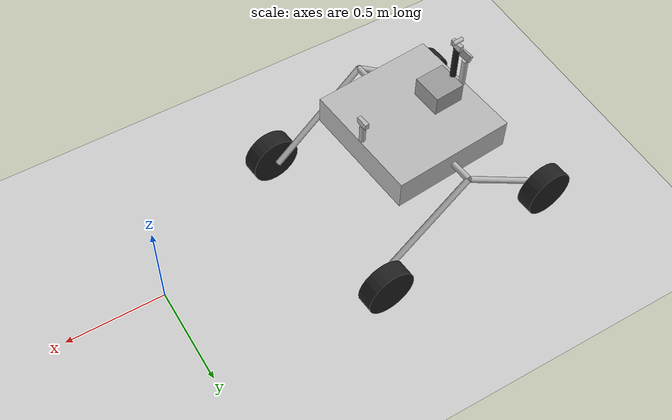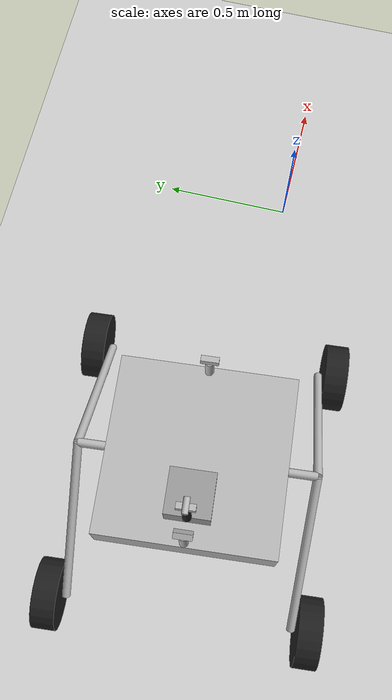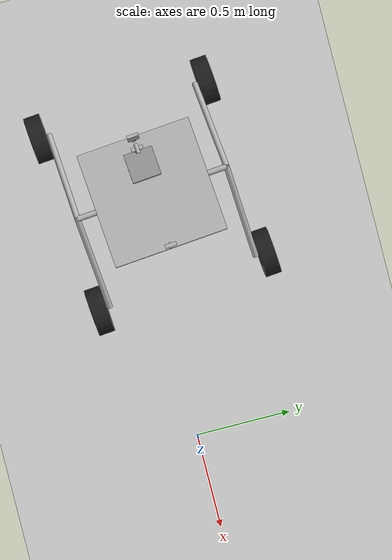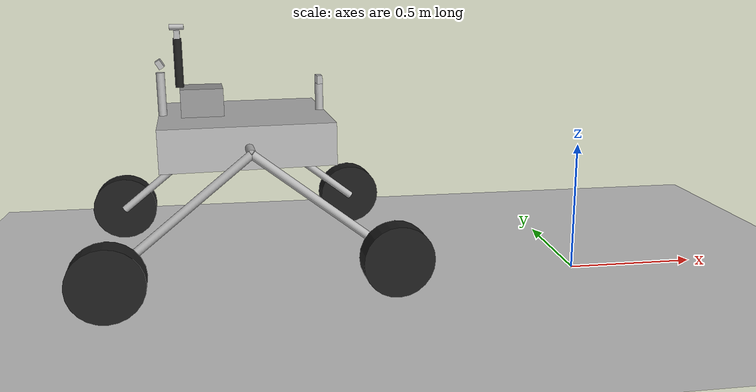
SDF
<sdf version="1.7">
 <world name="default">
  <light name="sun" type="directional">
   <pose>0 0 10 0 -0 0</pose>
   <diffuse>0.8 0.8 0.8 1</diffuse>
   <specular>0.2 0.2 0.2 1</specular>
   <attenuation>
    <range>1000</range>
    <constant>0.9</constant>
    <linear>0.01</linear>
    <quadratic>0.001</quadratic>
   </attenuation>
   <direction>-0.5 0.1 -0.9</direction>
   <spot><inner_angle>0</inner_angle><outer_angle>0</outer_angle><falloff>0</falloff></spot>
  </light>
  <model name="ground_plane">
   <static>1</static>
   <link name="link">
    <collision name="collision">
     <geometry><plane><normal>0 0 1</normal><size>100 100</size></plane></geometry>
     <surface><friction><ode><mu>100</mu><mu2>50</mu2></ode></friction></surface>
    </collision>
    <visual name="visual">
     <cast_shadows>0</cast_shadows>
     <geometry><plane><normal>0 0 1</normal><size>100 100</size></plane></geometry>
     <material>
      <script><uri>file://media/materials/scripts/gazebo.material</uri><name>Gazebo/Grey</name></script>
     </material>
    </visual>
   </link>
  </model>
  <gravity>0 0 -9.8</gravity>
  <magnetic_field>6e-06 2.3e-05 -4.2e-05</magnetic_field>
  <atmosphere type="adiabatic"/>
  <physics type="ode">
   <max_step_size>0.001</max_step_size>
   <real_time_factor>1</real_time_factor>
   <real_time_update_rate>1000</real_time_update_rate>
  </physics>
  <scene><ambient>0.4 0.4 0.4 1</ambient><background>0.7 0.7 0.7 1</background><shadows>1</shadows></scene>
  <audio><device>default</device></audio>
  <spherical_coordinates>
   <surface_model>EARTH_WGS84</surface_model>
   <latitude_deg>0</latitude_deg>
   <longitude_deg>0</longitude_deg>
   <elevation>0</elevation>
   <heading_deg>0</heading_deg>
  </spherical_coordinates>
  <light name="user_directional_light_0" type="directional">
   <pose>-0.070568 -0.022327 1 0 -0 0</pose>
   <diffuse>0.5 0.5 0.5 1</diffuse>
   <specular>0.1 0.1 0.1 1</specular>
   <direction>0.1 0.1 -0.9</direction>
   <attenuation>
    <range>20</range>
    <constant>0.5</constant>
    <linear>0.01</linear>
    <quadratic>0.001</quadratic>
   </attenuation>
   <spot><inner_angle>0</inner_angle><outer_angle>0</outer_angle><falloff>0</falloff></spot>
  </light>
  <light name="user_directional_light_1" type="directional">
   <pose>-5.26372 0.023747 1 0 -0 0</pose>
   <diffuse>0.5 0.5 0.5 1</diffuse>
   <specular>0.1 0.1 0.1 1</specular>
   <direction>0.1 0.1 -0.9</direction>
   <attenuation>
    <range>20</range>
    <constant>0.5</constant>
    <linear>0.01</linear>
    <quadratic>0.001</quadratic>
   </attenuation>
   <spot><inner_angle>0</inner_angle><outer_angle>0</outer_angle><falloff>0</falloff></spot>
  </light>
  <light name="user_directional_light_2" type="directional">
   <pose>8.31608 1.3791 1 0 -0 0</pose>
   <diffuse>0.5 0.5 0.5 1</diffuse>
   <specular>0.1 0.1 0.1 1</specular>
   <direction>0.1 0.1 -0.9</direction>
   <attenuation>
    <range>20</range>
    <constant>0.5</constant>
    <linear>0.01</linear>
    <quadratic>0.001</quadratic>
   </attenuation>
   <spot><inner_angle>0</inner_angle><outer_angle>0</outer_angle><falloff>0</falloff></spot>
  </light>
  <light name="user_directional_light_3" type="directional">
   <pose>-9.84632 -9.67318 1 0 -0 0</pose>
   <diffuse>0.5 0.5 0.5 1</diffuse>
   <specular>0.1 0.1 0.1 1</specular>
   <direction>0.1 0.1 -0.9</direction>
   <attenuation>
    <range>20</range>
    <constant>0.5</constant>
    <linear>0.01</linear>
    <quadratic>0.001</quadratic>
   </attenuation>
   <spot><inner_angle>0</inner_angle><outer_angle>0</outer_angle><falloff>0</falloff></spot>
  </light>
  <light name="user_directional_light_4" type="directional">
   <pose>9.15099 -9.88724 1 0 -0 0</pose>
   <diffuse>0.5 0.5 0.5 1</diffuse>
   <specular>0.1 0.1 0.1 1</specular>
   <direction>0.1 0.1 -0.9</direction>
   <attenuation>
    <range>20</range>
    <constant>0.5</constant>
    <linear>0.01</linear>
    <quadratic>0.001</quadratic>
   </attenuation>
   <spot><inner_angle>0</inner_angle><outer_angle>0</outer_angle><falloff>0</falloff></spot>
  </light>
  <light name="user_directional_light_5" type="directional">
   <pose>9.9512 10.2634 1 0 -0 0</pose>
   <diffuse>0.5 0.5 0.5 1</diffuse>
   <specular>0.1 0.1 0.1 1</specular>
   <direction>0.1 0.1 -0.9</direction>
   <attenuation>
    <range>20</range>
    <constant>0.5</constant>
    <linear>0.01</linear>
    <quadratic>0.001</quadratic>
   </attenuation>
   <spot><inner_angle>0</inner_angle><outer_angle>0</outer_angle><falloff>0</falloff></spot>
  </light>
  <light name="user_directional_light_6" type="directional">
   <pose>-10.0375 10.8985 1 0 -0 0</pose>
   <diffuse>0.5 0.5 0.5 1</diffuse>
   <specular>0.1 0.1 0.1 1</specular>
   <direction>0.1 0.1 -0.9</direction>
   <attenuation>
    <range>20</range>
    <constant>0.5</constant>
    <linear>0.01</linear>
    <quadratic>0.001</quadratic>
   </attenuation>
   <spot><inner_angle>0</inner_angle><outer_angle>0</outer_angle><falloff>0</falloff></spot>
  </light>
  <light name="user_point_light_0" type="point">
   <pose>-14.5382 15.183 1 0 -0 0</pose>
   <diffuse>0.5 0.5 0.5 1</diffuse>
   <specular>0.1 0.1 0.1 1</specular>
   <attenuation>
    <range>20</range>
    <constant>0.5</constant>
    <linear>0.01</linear>
    <quadratic>0.001</quadratic>
   </attenuation>
   <cast_shadows>0</cast_shadows>
   <direction>0 0 -1</direction>
   <spot><inner_angle>0</inner_angle><outer_angle>0</outer_angle><falloff>0</falloff></spot>
  </light>
  <light name="user_point_light_1" type="point">
   <pose>-1.49375 3.84131 1 0 -0 0</pose>
   <diffuse>0.5 0.5 0.5 1</diffuse>
   <specular>0.1 0.1 0.1 1</specular>
   <attenuation>
    <range>20</range>
    <constant>0.5</constant>
    <linear>0.01</linear>
    <quadratic>0.001</quadratic>
   </attenuation>
   <cast_shadows>0</cast_shadows>
   <direction>0 0 -1</direction>
   <spot><inner_angle>0</inner_angle><outer_angle>0</outer_angle><falloff>0</falloff></spot>
  </light>
  <light name="user_point_light_2" type="point">
   <pose>-19.8532 5.08826 1 0 -0 0</pose>
   <diffuse>0.5 0.5 0.5 1</diffuse>
   <specular>0.1 0.1 0.1 1</specular>
   <attenuation>
    <range>20</range>
    <constant>0.5</constant>
    <linear>0.01</linear>
    <quadratic>0.001</quadratic>
   </attenuation>
   <cast_shadows>0</cast_shadows>
   <direction>0 0 -1</direction>
   <spot><inner_angle>0</inner_angle><outer_angle>0</outer_angle><falloff>0</falloff></spot>
  </light>
  <light name="user_point_light_3" type="point">
   <pose>-9.24636 4.61592 1 0 -0 0</pose>
   <diffuse>0.5 0.5 0.5 1</diffuse>
   <specular>0.1 0.1 0.1 1</specular>
   <attenuation>
    <range>20</range>
    <constant>0.5</constant>
    <linear>0.01</linear>
    <quadratic>0.001</quadratic>
   </attenuation>
   <cast_shadows>0</cast_shadows>
   <direction>0 0 -1</direction>
   <spot><inner_angle>0</inner_angle><outer_angle>0</outer_angle><falloff>0</falloff></spot>
  </light>
  <light name="user_point_light_4" type="point">
   <pose>-2.9842 2.32247 1 0 -0 0</pose>
   <diffuse>0.5 0.5 0.5 1</diffuse>
   <specular>0.1 0.1 0.1 1</specular>
   <attenuation>
    <range>20</range>
    <constant>0.5</constant>
    <linear>0.01</linear>
    <quadratic>0.001</quadratic>
   </attenuation>
   <cast_shadows>0</cast_shadows>
   <direction>0 0 -1</direction>
   <spot><inner_angle>0</inner_angle><outer_angle>0</outer_angle><falloff>0</falloff></spot>
  </light>
  <light name="user_point_light_5" type="point">
   <pose>-27.0083 12.5073 1 0 -0 0</pose>
   <diffuse>0.5 0.5 0.5 1</diffuse>
   <specular>0.1 0.1 0.1 1</specular>
   <attenuation>
    <range>20</range>
    <constant>0.5</constant>
    <linear>0.01</linear>
    <quadratic>0.001</quadratic>
   </attenuation>
   <cast_shadows>0</cast_shadows>
   <direction>0 0 -1</direction>
   <spot><inner_angle>0</inner_angle><outer_angle>0</outer_angle><falloff>0</falloff></spot>
  </light>
  <light name="user_point_light_6" type="point">
   <pose>-29.9359 9.53439 1 0 -0 0</pose>
   <diffuse>0.5 0.5 0.5 1</diffuse>
   <specular>0.1 0.1 0.1 1</specular>
   <attenuation>
    <range>20</range>
    <constant>0.5</constant>
    <linear>0.01</linear>
    <quadratic>0.001</quadratic>
   </attenuation>
   <cast_shadows>0</cast_shadows>
   <direction>0 0 -1</direction>
   <spot><inner_angle>0</inner_angle><outer_angle>0</outer_angle><falloff>0</falloff></spot>
  </light>
  <light name="user_point_light_7" type="point">
   <pose>0.17787 21.9702 1 0 -0 0</pose>
   <diffuse>0.5 0.5 0.5 1</diffuse>
   <specular>0.1 0.1 0.1 1</specular>
   <attenuation>
    <range>20</range>
    <constant>0.5</constant>
    <linear>0.01</linear>
    <quadratic>0.001</quadratic>
   </attenuation>
   <cast_shadows>0</cast_shadows>
   <direction>0 0 -1</direction>
   <spot><inner_angle>0</inner_angle><outer_angle>0</outer_angle><falloff>0</falloff></spot>
  </light>
  <light name="user_point_light_9" type="point">
   <pose>2.789 19.1543 1 0 -0 0</pose>
   <diffuse>0.5 0.5 0.5 1</diffuse>
   <specular>0.1 0.1 0.1 1</specular>
   <attenuation>
    <range>20</range>
    <constant>0.5</constant>
    <linear>0.01</linear>
    <quadratic>0.001</quadratic>
   </attenuation>
   <cast_shadows>0</cast_shadows>
   <direction>0 0 -1</direction>
   <spot><inner_angle>0</inner_angle><outer_angle>0</outer_angle><falloff>0</falloff></spot>
  </light>
  <light name="user_point_light_10" type="point">
   <pose>-29.8025 29.7087 1 0 -0 0</pose>
   <diffuse>0.5 0.5 0.5 1</diffuse>
   <specular>0.1 0.1 0.1 1</specular>
   <attenuation>
    <range>20</range>
    <constant>0.5</constant>
    <linear>0.01</linear>
    <quadratic>0.001</quadratic>
   </attenuation>
   <cast_shadows>0</cast_shadows>
   <direction>0 0 -1</direction>
   <spot><inner_angle>0</inner_angle><outer_angle>0</outer_angle><falloff>0</falloff></spot>
  </light>
  <light name="user_point_light_11" type="point">
   <pose>-26.5274 32.3381 1 0 -0 0</pose>
   <diffuse>0.5 0.5 0.5 1</diffuse>
   <specular>0.1 0.1 0.1 1</specular>
   <attenuation>
    <range>20</range>
    <constant>0.5</constant>
    <linear>0.01</linear>
    <quadratic>0.001</quadratic>
   </attenuation>
   <cast_shadows>0</cast_shadows>
   <direction>0 0 -1</direction>
   <spot><inner_angle>0</inner_angle><outer_angle>0</outer_angle><falloff>0</falloff></spot>
  </light>
  <light name="user_point_light_12" type="point">
   <pose>-15.7215 32.3837 1 0 -0 0</pose>
   <diffuse>0.5 0.5 0.5 1</diffuse>
   <specular>0.1 0.1 0.1 1</specular>
   <attenuation>
    <range>20</range>
    <constant>0.5</constant>
    <linear>0.01</linear>
    <quadratic>0.001</quadratic>
   </attenuation>
   <cast_shadows>0</cast_shadows>
   <direction>0 0 -1</direction>
   <spot><inner_angle>0</inner_angle><outer_angle>0</outer_angle><falloff>0</falloff></spot>
  </light>
  <light name="user_point_light_13" type="point">
   <pose>-0.779195 27.6092 1 0 -0 0</pose>
   <diffuse>0.5 0.5 0.5 1</diffuse>
   <specular>0.1 0.1 0.1 1</specular>
   <attenuation>
    <range>20</range>
    <constant>0.5</constant>
    <linear>0.01</linear>
    <quadratic>0.001</quadratic>
   </attenuation>
   <cast_shadows>0</cast_shadows>
   <direction>0 0 -1</direction>
   <spot><inner_angle>0</inner_angle><outer_angle>0</outer_angle><falloff>0</falloff></spot>
  </light>
  <light name="user_point_light_14" type="point">
   <pose>-1.48071 32.5277 1 0 -0 0</pose>
   <diffuse>0.5 0.5 0.5 1</diffuse>
   <specular>0.1 0.1 0.1 1</specular>
   <attenuation>
    <range>20</range>
    <constant>0.5</constant>
    <linear>0.01</linear>
    <quadratic>0.001</quadratic>
   </attenuation>
   <cast_shadows>0</cast_shadows>
   <direction>0 0 -1</direction>
   <spot><inner_angle>0</inner_angle><outer_angle>0</outer_angle><falloff>0</falloff></spot>
  </light>
  <light name="user_point_light_15" type="point">
   <pose>-13.1654 19.1525 1 0 -0 0</pose>
   <diffuse>0.5 0.5 0.5 1</diffuse>
   <specular>0.1 0.1 0.1 1</specular>
   <attenuation>
    <range>20</range>
    <constant>0.5</constant>
    <linear>0.01</linear>
    <quadratic>0.001</quadratic>
   </attenuation>
   <cast_shadows>0</cast_shadows>
   <direction>0 0 -1</direction>
   <spot><inner_angle>0</inner_angle><outer_angle>0</outer_angle><falloff>0</falloff></spot>
  </light>
  <light name="user_point_light_16" type="point">
   <pose>-12.2243 20.8845 1 0 -0 0</pose>
   <diffuse>0.5 0.5 0.5 1</diffuse>
   <specular>0.1 0.1 0.1 1</specular>
   <attenuation>
    <range>20</range>
    <constant>0.5</constant>
    <linear>0.01</linear>
    <quadratic>0.001</quadratic>
   </attenuation>
   <cast_shadows>0</cast_shadows>
   <direction>0 0 -1</direction>
   <spot><inner_angle>0</inner_angle><outer_angle>0</outer_angle><falloff>0</falloff></spot>
  </light>
  <light name="user_point_light_17" type="point">
   <pose>-14.9667 21.0743 1 0 -0 0</pose>
   <diffuse>0.5 0.5 0.5 1</diffuse>
   <specular>0.1 0.1 0.1 1</specular>
   <attenuation>
    <range>20</range>
    <constant>0.5</constant>
    <linear>0.01</linear>
    <quadratic>0.001</quadratic>
   </attenuation>
   <cast_shadows>0</cast_shadows>
   <direction>0 0 -1</direction>
   <spot><inner_angle>0</inner_angle><outer_angle>0</outer_angle><falloff>0</falloff></spot>
  </light>
  <light name="user_point_light_18" type="point">
   <pose>-16.7804 19.2116 1 0 -0 0</pose>
   <diffuse>0.5 0.5 0.5 1</diffuse>
   <specular>0.1 0.1 0.1 1</specular>
   <attenuation>
    <range>20</range>
    <constant>0.5</constant>
    <linear>0.01</linear>
    <quadratic>0.001</quadratic>
   </attenuation>
   <cast_shadows>0</cast_shadows>
   <direction>0 0 -1</direction>
   <spot><inner_angle>0</inner_angle><outer_angle>0</outer_angle><falloff>0</falloff></spot>
  </light>
  <light name="user_point_light_19" type="point">
   <pose>-17.9644 20.9041 1 0 -0 0</pose>
   <diffuse>0.5 0.5 0.5 1</diffuse>
   <specular>0.1 0.1 0.1 1</specular>
   <attenuation>
    <range>20</range>
    <constant>0.5</constant>
    <linear>0.01</linear>
    <quadratic>0.001</quadratic>
   </attenuation>
   <cast_shadows>0</cast_shadows>
   <direction>0 0 -1</direction>
   <spot><inner_angle>0</inner_angle><outer_angle>0</outer_angle><falloff>0</falloff></spot>
  </light>
  <light name="user_point_light_20" type="point">
   <pose>-20.0538 19.1316 1 0 -0 0</pose>
   <diffuse>0.5 0.5 0.5 1</diffuse>
   <specular>0.1 0.1 0.1 1</specular>
   <attenuation>
    <range>20</range>
    <constant>0.5</constant>
    <linear>0.01</linear>
    <quadratic>0.001</quadratic>
   </attenuation>
   <cast_shadows>0</cast_shadows>
   <direction>0 0 -1</direction>
   <spot><inner_angle>0</inner_angle><outer_angle>0</outer_angle><falloff>0</falloff></spot>
  </light>
  <light name="user_point_light_21" type="point">
   <pose>-20.8227 21.0521 1 0 -0 0</pose>
   <diffuse>0.5 0.5 0.5 1</diffuse>
   <specular>0.1 0.1 0.1 1</specular>
   <attenuation>
    <range>20</range>
    <constant>0.5</constant>
    <linear>0.01</linear>
    <quadratic>0.001</quadratic>
   </attenuation>
   <cast_shadows>0</cast_shadows>
   <direction>0 0 -1</direction>
   <spot><inner_angle>0</inner_angle><outer_angle>0</outer_angle><falloff>0</falloff></spot>
  </light>
  <light name="user_point_light_22" type="point">
   <pose>-23.0722 19.1966 1 0 -0 0</pose>
   <diffuse>0.5 0.5 0.5 1</diffuse>
   <specular>0.1 0.1 0.1 1</specular>
   <attenuation>
    <range>20</range>
    <constant>0.5</constant>
    <linear>0.01</linear>
    <quadratic>0.001</quadratic>
   </attenuation>
   <cast_shadows>0</cast_shadows>
   <direction>0 0 -1</direction>
   <spot><inner_angle>0</inner_angle><outer_angle>0</outer_angle><falloff>0</falloff></spot>
  </light>
  <light name="user_point_light_23" type="point">
   <pose>-24.0466 21.1105 1 0 -0 0</pose>
   <diffuse>0.5 0.5 0.5 1</diffuse>
   <specular>0.1 0.1 0.1 1</specular>
   <attenuation>
    <range>20</range>
    <constant>0.5</constant>
    <linear>0.01</linear>
    <quadratic>0.001</quadratic>
   </attenuation>
   <cast_shadows>0</cast_shadows>
   <direction>0 0 -1</direction>
   <spot><inner_angle>0</inner_angle><outer_angle>0</outer_angle><falloff>0</falloff></spot>
  </light>
  <light name="user_point_light_24" type="point">
   <pose>-13.8616 37.5709 1 0 -0 0</pose>
   <diffuse>0.5 0.5 0.5 1</diffuse>
   <specular>0.1 0.1 0.1 1</specular>
   <attenuation>
    <range>20</range>
    <constant>0.5</constant>
    <linear>0.01</linear>
    <quadratic>0.001</quadratic>
   </attenuation>
   <cast_shadows>0</cast_shadows>
   <direction>0 0 -1</direction>
   <spot><inner_angle>0</inner_angle><outer_angle>0</outer_angle><falloff>0</falloff></spot>
  </light>
  <light name="user_point_light_25" type="point">
   <pose>-23.8197 37.2109 1 0 -0 0</pose>
   <diffuse>0.5 0.5 0.5 1</diffuse>
   <specular>0.1 0.1 0.1 1</specular>
   <attenuation>
    <range>20</range>
    <constant>0.5</constant>
    <linear>0.01</linear>
    <quadratic>0.001</quadratic>
   </attenuation>
   <cast_shadows>0</cast_shadows>
   <direction>0 0 -1</direction>
   <spot><inner_angle>0</inner_angle><outer_angle>0</outer_angle><falloff>0</falloff></spot>
  </light>
  <light name="user_point_light_8" type="point">
   <pose>-15.1409 38.0684 1 0 -0 0</pose>
   <diffuse>0.5 0.5 0.5 1</diffuse>
   <specular>0.1 0.1 0.1 1</specular>
   <attenuation>
    <range>20</range>
    <constant>0.5</constant>
    <linear>0.01</linear>
    <quadratic>0.001</quadratic>
   </attenuation>
   <cast_shadows>0</cast_shadows>
   <direction>0 0 -1</direction>
   <spot><inner_angle>0</inner_angle><outer_angle>0</outer_angle><falloff>0</falloff></spot>
  </light>
  <light name="user_point_light_26" type="point">
   <pose>-24.9128 38.12 1 0 -0 0</pose>
   <diffuse>0.5 0.5 0.5 1</diffuse>
   <specular>0.1 0.1 0.1 1</specular>
   <attenuation>
    <range>20</range>
    <constant>0.5</constant>
    <linear>0.01</linear>
    <quadratic>0.001</quadratic>
   </attenuation>
   <cast_shadows>0</cast_shadows>
   <direction>0 0 -1</direction>
   <spot><inner_angle>0</inner_angle><outer_angle>0</outer_angle><falloff>0</falloff></spot>
  </light>
  <light name="user_point_light_27" type="point">
   <pose>-7.05199 39.5828 1 0 -0 0</pose>
   <diffuse>0.5 0.5 0.5 1</diffuse>
   <specular>0.1 0.1 0.1 1</specular>
   <attenuation>
    <range>20</range>
    <constant>0.5</constant>
    <linear>0.01</linear>
    <quadratic>0.001</quadratic>
   </attenuation>
   <cast_shadows>0</cast_shadows>
   <direction>0 0 -1</direction>
   <spot><inner_angle>0</inner_angle><outer_angle>0</outer_angle><falloff>0</falloff></spot>
  </light>
  <light name="user_point_light_28" type="point">
   <pose>3.21399 38.6387 1 0 -0 0</pose>
   <diffuse>0.5 0.5 0.5 1</diffuse>
   <specular>0.1 0.1 0.1 1</specular>
   <attenuation>
    <range>20</range>
    <constant>0.5</constant>
    <linear>0.01</linear>
    <quadratic>0.001</quadratic>
   </attenuation>
   <cast_shadows>0</cast_shadows>
   <direction>0 0 -1</direction>
   <spot><inner_angle>0</inner_angle><outer_angle>0</outer_angle><falloff>0</falloff></spot>
  </light>
  <light name="user_point_light_29" type="point">
   <pose>-17.0353 45.3875 1 0 -0 0</pose>
   <diffuse>0.5 0.5 0.5 1</diffuse>
   <specular>0.1 0.1 0.1 1</specular>
   <attenuation>
    <range>20</range>
    <constant>0.5</constant>
    <linear>0.01</linear>
    <quadratic>0.001</quadratic>
   </attenuation>
   <cast_shadows>0</cast_shadows>
   <direction>0 0 -1</direction>
   <spot><inner_angle>0</inner_angle><outer_angle>0</outer_angle><falloff>0</falloff></spot>
  </light>
  <light name="user_point_light_30" type="point">
   <pose>-1.61509 -4.78976 1 0 -0 0</pose>
   <diffuse>0.5 0.5 0.5 1</diffuse>
   <specular>0.1 0.1 0.1 1</specular>
   <attenuation>
    <range>20</range>
    <constant>0.5</constant>
    <linear>0.01</linear>
    <quadratic>0.001</quadratic>
   </attenuation>
   <cast_shadows>0</cast_shadows>
   <direction>0 0 -1</direction>
   <spot><inner_angle>0</inner_angle><outer_angle>0</outer_angle><falloff>0</falloff></spot>
  </light>
  <light name="user_point_light_31" type="point">
   <pose>-6.5483 -5.07785 1 0 -0 0</pose>
   <diffuse>0.5 0.5 0.5 1</diffuse>
   <specular>0.1 0.1 0.1 1</specular>
   <attenuation>
    <range>20</range>
    <constant>0.5</constant>
    <linear>0.01</linear>
    <quadratic>0.001</quadratic>
   </attenuation>
   <cast_shadows>0</cast_shadows>
   <direction>0 0 -1</direction>
   <spot><inner_angle>0</inner_angle><outer_angle>0</outer_angle><falloff>0</falloff></spot>
  </light>
  <light name="user_point_light_32" type="point">
   <pose>-12.5443 -5.50857 1 0 -0 0</pose>
   <diffuse>0.5 0.5 0.5 1</diffuse>
   <specular>0.1 0.1 0.1 1</specular>
   <attenuation>
    <range>20</range>
    <constant>0.5</constant>
    <linear>0.01</linear>
    <quadratic>0.001</quadratic>
   </attenuation>
   <cast_shadows>0</cast_shadows>
   <direction>0 0 -1</direction>
   <spot><inner_angle>0</inner_angle><outer_angle>0</outer_angle><falloff>0</falloff></spot>
  </light>
  <light name="user_point_light_33" type="point">
   <pose>-16.6781 -5.43825 1 0 -0 0</pose>
   <diffuse>0.5 0.5 0.5 1</diffuse>
   <specular>0.1 0.1 0.1 1</specular>
   <attenuation>
    <range>20</range>
    <constant>0.5</constant>
    <linear>0.01</linear>
    <quadratic>0.001</quadratic>
   </attenuation>
   <cast_shadows>0</cast_shadows>
   <direction>0 0 -1</direction>
   <spot><inner_angle>0</inner_angle><outer_angle>0</outer_angle><falloff>0</falloff></spot>
  </light>
  <light name="user_point_light_34" type="point">
   <pose>-21.223 -4.72307 1 0 -0 0</pose>
   <diffuse>0.5 0.5 0.5 1</diffuse>
   <specular>0.1 0.1 0.1 1</specular>
   <attenuation>
    <range>20</range>
    <constant>0.5</constant>
    <linear>0.01</linear>
    <quadratic>0.001</quadratic>
   </attenuation>
   <cast_shadows>0</cast_shadows>
   <direction>0 0 -1</direction>
   <spot><inner_angle>0</inner_angle><outer_angle>0</outer_angle><falloff>0</falloff></spot>
  </light>
  <light name="user_point_light_35" type="point">
   <pose>-26.8284 -4.03458 1 0 -0 0</pose>
   <diffuse>0.5 0.5 0.5 1</diffuse>
   <specular>0.1 0.1 0.1 1</specular>
   <attenuation>
    <range>20</range>
    <constant>0.5</constant>
    <linear>0.01</linear>
    <quadratic>0.001</quadratic>
   </attenuation>
   <cast_shadows>0</cast_shadows>
   <direction>0 0 -1</direction>
   <spot><inner_angle>0</inner_angle><outer_angle>0</outer_angle><falloff>0</falloff></spot>
  </light>
  <light name="user_point_light_36" type="point">
   <pose>-31.3246 -0.271714 1 0 -0 0</pose>
   <diffuse>0.5 0.5 0.5 1</diffuse>
   <specular>0.1 0.1 0.1 1</specular>
   <attenuation>
    <range>20</range>
    <constant>0.5</constant>
    <linear>0.01</linear>
    <quadratic>0.001</quadratic>
   </attenuation>
   <cast_shadows>0</cast_shadows>
   <direction>0 0 -1</direction>
   <spot><inner_angle>0</inner_angle><outer_angle>0</outer_angle><falloff>0</falloff></spot>
  </light>
  <light name="user_point_light_37" type="point">
   <pose>-32.6728 4.89076 1 0 -0 0</pose>
   <diffuse>0.5 0.5 0.5 1</diffuse>
   <specular>0.1 0.1 0.1 1</specular>
   <attenuation>
    <range>20</range>
    <constant>0.5</constant>
    <linear>0.01</linear>
    <quadratic>0.001</quadratic>
   </attenuation>
   <cast_shadows>0</cast_shadows>
   <direction>0 0 -1</direction>
   <spot><inner_angle>0</inner_angle><outer_angle>0</outer_angle><falloff>0</falloff></spot>
  </light>
  <light name="user_point_light_38" type="point">
   <pose>-16.6045 4.14829 1 0 -0 0</pose>
   <diffuse>0.5 0.5 0.5 1</diffuse>
   <specular>0.1 0.1 0.1 1</specular>
   <attenuation>
    <range>20</range>
    <constant>0.5</constant>
    <linear>0.01</linear>
    <quadratic>0.001</quadratic>
   </attenuation>
   <cast_shadows>0</cast_shadows>
   <direction>0 0 -1</direction>
   <spot><inner_angle>0</inner_angle><outer_angle>0</outer_angle><falloff>0</falloff></spot>
  </light>
  <light name="user_point_light_39" type="point">
   <pose>-5.73633 4.50296 1 0 -0 0</pose>
   <diffuse>0.5 0.5 0.5 1</diffuse>
   <specular>0.1 0.1 0.1 1</specular>
   <attenuation>
    <range>20</range>
    <constant>0.5</constant>
    <linear>0.01</linear>
    <quadratic>0.001</quadratic>
   </attenuation>
   <cast_shadows>0</cast_shadows>
   <direction>0 0 -1</direction>
   <spot><inner_angle>0</inner_angle><outer_angle>0</outer_angle><falloff>0</falloff></spot>
  </light>
  <light name="user_point_light_40" type="point">
   <pose>3.42724 9.35036 1 0 -0 0</pose>
   <diffuse>0.5 0.5 0.5 1</diffuse>
   <specular>0.1 0.1 0.1 1</specular>
   <attenuation>
    <range>20</range>
    <constant>0.5</constant>
    <linear>0.01</linear>
    <quadratic>0.001</quadratic>
   </attenuation>
   <cast_shadows>0</cast_shadows>
   <direction>0 0 -1</direction>
   <spot><inner_angle>0</inner_angle><outer_angle>0</outer_angle><falloff>0</falloff></spot>
  </light>
  <light name="user_point_light_41" type="point">
   <pose>6.1985 13.2192 1 0 -0 0</pose>
   <diffuse>0.5 0.5 0.5 1</diffuse>
   <specular>0.1 0.1 0.1 1</specular>
   <attenuation>
    <range>20</range>
    <constant>0.5</constant>
    <linear>0.01</linear>
    <quadratic>0.001</quadratic>
   </attenuation>
   <cast_shadows>0</cast_shadows>
   <direction>0 0 -1</direction>
   <spot><inner_angle>0</inner_angle><outer_angle>0</outer_angle><falloff>0</falloff></spot>
  </light>
  <light name="user_point_light_42" type="point">
   <pose>5.38756 17.5374 1 0 -0 0</pose>
   <diffuse>0.5 0.5 0.5 1</diffuse>
   <specular>0.1 0.1 0.1 1</specular>
   <attenuation>
    <range>20</range>
    <constant>0.5</constant>
    <linear>0.01</linear>
    <quadratic>0.001</quadratic>
   </attenuation>
   <cast_shadows>0</cast_shadows>
   <direction>0 0 -1</direction>
   <spot><inner_angle>0</inner_angle><outer_angle>0</outer_angle><falloff>0</falloff></spot>
  </light>
  <light name="user_point_light_43" type="point">
   <pose>3.32695 21.0624 1 0 -0 0</pose>
   <diffuse>0.5 0.5 0.5 1</diffuse>
   <specular>0.1 0.1 0.1 1</specular>
   <attenuation>
    <range>20</range>
    <constant>0.5</constant>
    <linear>0.01</linear>
    <quadratic>0.001</quadratic>
   </attenuation>
   <cast_shadows>0</cast_shadows>
   <direction>0 0 -1</direction>
   <spot><inner_angle>0</inner_angle><outer_angle>0</outer_angle><falloff>0</falloff></spot>
  </light>
  <light name="user_point_light_44" type="point">
   <pose>-31.427 18.5744 1 0 -0 0</pose>
   <diffuse>0.5 0.5 0.5 1</diffuse>
   <specular>0.1 0.1 0.1 1</specular>
   <attenuation>
    <range>20</range>
    <constant>0.5</constant>
    <linear>0.01</linear>
    <quadratic>0.001</quadratic>
   </attenuation>
   <cast_shadows>0</cast_shadows>
   <direction>0 0 -1</direction>
   <spot><inner_angle>0</inner_angle><outer_angle>0</outer_angle><falloff>0</falloff></spot>
  </light>
  <light name="user_point_light_45" type="point">
   <pose>-32.492 25.4462 1 0 -0 0</pose>
   <diffuse>0.5 0.5 0.5 1</diffuse>
   <specular>0.1 0.1 0.1 1</specular>
   <attenuation>
    <range>20</range>
    <constant>0.5</constant>
    <linear>0.01</linear>
    <quadratic>0.001</quadratic>
   </attenuation>
   <cast_shadows>0</cast_shadows>
   <direction>0 0 -1</direction>
   <spot><inner_angle>0</inner_angle><outer_angle>0</outer_angle><falloff>0</falloff></spot>
  </light>
  <light name="user_point_light_46" type="point">
   <pose>-19.3987 34.5322 1 0 -0 0</pose>
   <diffuse>0.5 0.5 0.5 1</diffuse>
   <specular>0.1 0.1 0.1 1</specular>
   <attenuation>
    <range>20</range>
    <constant>0.5</constant>
    <linear>0.01</linear>
    <quadratic>0.001</quadratic>
   </attenuation>
   <cast_shadows>0</cast_shadows>
   <direction>0 0 -1</direction>
   <spot><inner_angle>0</inner_angle><outer_angle>0</outer_angle><falloff>0</falloff></spot>
  </light>
  <light name="user_point_light_47" type="point">
   <pose>-12.4057 34.2264 1 0 -0 0</pose>
   <diffuse>0.5 0.5 0.5 1</diffuse>
   <specular>0.1 0.1 0.1 1</specular>
   <attenuation>
    <range>20</range>
    <constant>0.5</constant>
    <linear>0.01</linear>
    <quadratic>0.001</quadratic>
   </attenuation>
   <cast_shadows>0</cast_shadows>
   <direction>0 0 -1</direction>
   <spot><inner_angle>0</inner_angle><outer_angle>0</outer_angle><falloff>0</falloff></spot>
  </light>
  <light name="user_point_light_48" type="point">
   <pose>-6.68891 34.1362 1 0 -0 0</pose>
   <diffuse>0.5 0.5 0.5 1</diffuse>
   <specular>0.1 0.1 0.1 1</specular>
   <attenuation>
    <range>20</range>
    <constant>0.5</constant>
    <linear>0.01</linear>
    <quadratic>0.001</quadratic>
   </attenuation>
   <cast_shadows>0</cast_shadows>
   <direction>0 0 -1</direction>
   <spot><inner_angle>0</inner_angle><outer_angle>0</outer_angle><falloff>0</falloff></spot>
  </light>
  <light name="user_point_light_49" type="point">
   <pose>-9.05153 25.9034 1 0 -0 0</pose>
   <diffuse>0.5 0.5 0.5 1</diffuse>
   <specular>0.1 0.1 0.1 1</specular>
   <attenuation>
    <range>20</range>
    <constant>0.5</constant>
    <linear>0.01</linear>
    <quadratic>0.001</quadratic>
   </attenuation>
   <cast_shadows>0</cast_shadows>
   <direction>0 0 -1</direction>
   <spot><inner_angle>0</inner_angle><outer_angle>0</outer_angle><falloff>0</falloff></spot>
  </light>
  <light name="user_point_light_50" type="point">
   <pose>-16.1461 26.0774 1 0 -0 0</pose>
   <diffuse>0.5 0.5 0.5 1</diffuse>
   <specular>0.1 0.1 0.1 1</specular>
   <attenuation>
    <range>20</range>
    <constant>0.5</constant>
    <linear>0.01</linear>
    <quadratic>0.001</quadratic>
   </attenuation>
   <cast_shadows>0</cast_shadows>
   <direction>0 0 -1</direction>
   <spot><inner_angle>0</inner_angle><outer_angle>0</outer_angle><falloff>0</falloff></spot>
  </light>
  <light name="user_point_light_51" type="point">
   <pose>-20.6051 26.4484 1 0 -0 0</pose>
   <diffuse>0.5 0.5 0.5 1</diffuse>
   <specular>0.1 0.1 0.1 1</specular>
   <attenuation>
    <range>20</range>
    <constant>0.5</constant>
    <linear>0.01</linear>
    <quadratic>0.001</quadratic>
   </attenuation>
   <cast_shadows>0</cast_shadows>
   <direction>0 0 -1</direction>
   <spot><inner_angle>0</inner_angle><outer_angle>0</outer_angle><falloff>0</falloff></spot>
  </light>
  <light name="user_point_light_52" type="point">
   <pose>-4.13144 -3.31743 1 0 -0 0</pose>
   <diffuse>0.5 0.5 0.5 1</diffuse>
   <specular>0.1 0.1 0.1 1</specular>
   <attenuation>
    <range>20</range>
    <constant>0.5</constant>
    <linear>0.01</linear>
    <quadratic>0.001</quadratic>
   </attenuation>
   <cast_shadows>0</cast_shadows>
   <direction>0 0 -1</direction>
   <spot><inner_angle>0</inner_angle><outer_angle>0</outer_angle><falloff>0</falloff></spot>
  </light>
  <light name="user_point_light_53" type="point">
   <pose>-0.787376 -3.44222 1 0 -0 0</pose>
   <diffuse>0.5 0.5 0.5 1</diffuse>
   <specular>0.1 0.1 0.1 1</specular>
   <attenuation>
    <range>20</range>
    <constant>0.5</constant>
    <linear>0.01</linear>
    <quadratic>0.001</quadratic>
   </attenuation>
   <cast_shadows>0</cast_shadows>
   <direction>0 0 -1</direction>
   <spot><inner_angle>0</inner_angle><outer_angle>0</outer_angle><falloff>0</falloff></spot>
  </light>
  <light name="user_point_light_54" type="point">
   <pose>-9.429 -3.39597 1 0 -0 0</pose>
   <diffuse>0.5 0.5 0.5 1</diffuse>
   <specular>0.1 0.1 0.1 1</specular>
   <attenuation>
    <range>20</range>
    <constant>0.5</constant>
    <linear>0.01</linear>
    <quadratic>0.001</quadratic>
   </attenuation>
   <cast_shadows>0</cast_shadows>
   <direction>0 0 -1</direction>
   <spot><inner_angle>0</inner_angle><outer_angle>0</outer_angle><falloff>0</falloff></spot>
  </light>
  <model name="ika">
   <link name="base_footprint">
    <inertial>
     <pose>0.008091 0 0.412618 0 -0 0</pose>
     <mass>27.5</mass>
     <inertia>
      <ixx>3.15377</ixx>
      <ixy>0</ixy>
      <ixz>-0.0580261</ixz>
      <iyy>4.14899</iyy>
      <iyz>0</iyz>
      <izz>3.90652</izz>
     </inertia>
    </inertial>
    <collision name="base_footprint_fixed_joint_lump__base_link_collision">
     <pose>0 0 0.505 0 -0 0</pose>
     <geometry><box><size>0.6 0.6 0.15</size></box></geometry>
    </collision>
    <collision name="base_footprint_fixed_joint_lump__gps_link_collision_1">
     <pose>0.05 0 0.505 0 -0 0</pose>
     <geometry><cylinder><length>0.02</length><radius>0.01</radius></cylinder></geometry>
    </collision>
    <collision name="base_footprint_fixed_joint_lump__imu_link_collision_2">
     <pose>0 0 0.505 0 -0 0</pose>
     <geometry><cylinder><length>0.02</length><radius>0.01</radius></cylinder></geometry>
    </collision>
    <collision name="base_footprint_fixed_joint_lump__left_diff_holder_collision_3">
     <pose>0 0.35125 0.505 1.5708 -0 0</pose>
     <geometry><cylinder><length>0.1025</length><radius>0.015</radius></cylinder></geometry>
    </collision>
    <collision name="base_footprint_fixed_joint_lump__front_left_wheel_holder_collision_4">
     <pose>0.2375 0.4025 0.315 0 -0.896 0</pose>
     <geometry><cylinder><length>0.608</length><radius>0.015</radius></cylinder></geometry>
    </collision>
    <collision name="base_footprint_fixed_joint_lump__rear_left_wheel_holder_collision_5">
     <pose>-0.2375 0.4025 0.315 0 0.896 0</pose>
     <geometry><cylinder><length>0.608</length><radius>0.015</radius></cylinder></geometry>
    </collision>
    <collision name="base_footprint_fixed_joint_lump__rear_camera_holder_collision_6">
     <pose>-0.285 0 0.63 0 -0 0</pose>
     <geometry><cylinder><length>0.1</length><radius>0.015</radius></cylinder></geometry>
    </collision>
    <collision name="base_footprint_fixed_joint_lump__rear_camera_collision_7">
     <pose>-0.285 0 0.695 3.14159 -1e-06 3.14159</pose>
     <geometry><box><size>0.02 0.06 0.03</size></box></geometry>
    </collision>
    <collision name="base_footprint_fixed_joint_lump__right_diff_holder_collision_8">
     <pose>0 -0.35125 0.505 1.5708 -0 0</pose>
     <geometry><cylinder><length>0.1025</length><radius>0.015</radius></cylinder></geometry>
    </collision>
    <collision name="base_footprint_fixed_joint_lump__front_right_wheel_holder_collision_9">
     <pose>0.2375 -0.4025 0.315 0 -0.896 0</pose>
     <geometry><cylinder><length>0.608</length><radius>0.015</radius></cylinder></geometry>
    </collision>
    <collision name="base_footprint_fixed_joint_lump__rear_right_wheel_holder_collision_10">
     <pose>-0.2375 -0.4025 0.315 0 0.896 0</pose>
     <geometry><cylinder><length>0.608</length><radius>0.015</radius></cylinder></geometry>
    </collision>
    <collision name="base_footprint_fixed_joint_lump__shoot_platform_collision_11">
     <pose>0.145 0 0.63 0 -0 0</pose>
     <geometry><box><size>0.15 0.15 0.1</size></box></geometry>
    </collision>
    <collision name="base_footprint_fixed_joint_lump__front_camera_holder_collision_12">
     <pose>0.285 0 0.6575 0 -0 0</pose>
     <geometry><cylinder><length>0.155</length><radius>0.015</radius></cylinder></geometry>
    </collision>
    <collision name="base_footprint_fixed_joint_lump__front_camera_collision_13">
     <pose>0.285 0 0.765 0 0.546 0</pose>
     <geometry><box><size>0.02 0.06 0.03</size></box></geometry>
    </collision>
    <visual name="base_footprint_fixed_joint_lump__base_link_visual">
     <pose>0 0 0.505 0 -0 0</pose>
     <geometry><box><size>0.6 0.6 0.15</size></box></geometry>
    </visual>
    <visual name="base_footprint_fixed_joint_lump__gps_link_visual_1">
     <pose>0.05 0 0.505 0 -0 0</pose>
     <geometry><cylinder><length>0.02</length><radius>0.01</radius></cylinder></geometry>
    </visual>
    <visual name="base_footprint_fixed_joint_lump__imu_link_visual_2">
     <pose>0 0 0.505 0 -0 0</pose>
     <geometry><cylinder><length>0.02</length><radius>0.01</radius></cylinder></geometry>
    </visual>
    <visual name="base_footprint_fixed_joint_lump__left_diff_holder_visual_3">
     <pose>0 0.35125 0.505 1.5708 -0 0</pose>
     <geometry><cylinder><length>0.1025</length><radius>0.015</radius></cylinder></geometry>
    </visual>
    <visual name="base_footprint_fixed_joint_lump__front_left_wheel_holder_visual_4">
     <pose>0.2375 0.4025 0.315 0 -0.896 0</pose>
     <geometry><cylinder><length>0.608</length><radius>0.015</radius></cylinder></geometry>
    </visual>
    <visual name="base_footprint_fixed_joint_lump__rear_left_wheel_holder_visual_5">
     <pose>-0.2375 0.4025 0.315 0 0.896 0</pose>
     <geometry><cylinder><length>0.608</length><radius>0.015</radius></cylinder></geometry>
    </visual>
    <visual name="base_footprint_fixed_joint_lump__rear_camera_holder_visual_6">
     <pose>-0.285 0 0.63 0 -0 0</pose>
     <geometry><cylinder><length>0.1</length><radius>0.015</radius></cylinder></geometry>
    </visual>
    <visual name="base_footprint_fixed_joint_lump__rear_camera_visual_7">
     <pose>-0.285 0 0.695 3.14159 -1e-06 3.14159</pose>
     <geometry><box><size>0.02 0.06 0.03</size></box></geometry>
    </visual>
    <visual name="base_footprint_fixed_joint_lump__right_diff_holder_visual_8">
     <pose>0 -0.35125 0.505 1.5708 -0 0</pose>
     <geometry><cylinder><length>0.1025</length><radius>0.015</radius></cylinder></geometry>
    </visual>
    <visual name="base_footprint_fixed_joint_lump__front_right_wheel_holder_visual_9">
     <pose>0.2375 -0.4025 0.315 0 -0.896 0</pose>
     <geometry><cylinder><length>0.608</length><radius>0.015</radius></cylinder></geometry>
    </visual>
    <visual name="base_footprint_fixed_joint_lump__rear_right_wheel_holder_visual_10">
     <pose>-0.2375 -0.4025 0.315 0 0.896 0</pose>
     <geometry><cylinder><length>0.608</length><radius>0.015</radius></cylinder></geometry>
    </visual>
    <visual name="base_footprint_fixed_joint_lump__shoot_platform_visual_11">
     <pose>0.145 0 0.63 0 -0 0</pose>
     <geometry><box><size>0.15 0.15 0.1</size></box></geometry>
     <material>
      <script><name>Gazebo/Grey</name><uri>file://media/materials/scripts/gazebo.material</uri></script>
     </material>
    </visual>
    <visual name="base_footprint_fixed_joint_lump__front_camera_holder_visual_12">
     <pose>0.285 0 0.6575 0 -0 0</pose>
     <geometry><cylinder><length>0.155</length><radius>0.015</radius></cylinder></geometry>
    </visual>
    <visual name="base_footprint_fixed_joint_lump__front_camera_visual_13">
     <pose>0.285 0 0.765 0 0.546 0</pose>
     <geometry><box><size>0.02 0.06 0.03</size></box></geometry>
    </visual>
    <sensor name="rear_camera" type="camera">
     <update_rate>4</update_rate>
     <camera name="rear_camera">
      <horizontal_fov>0.9</horizontal_fov>
      <image><width>640</width><height>480</height><format>R8G8B8</format></image>
      <clip><near>0.02</near><far>15</far></clip>
      <noise><type>gaussian</type><mean>0</mean><stddev>0.007</stddev></noise>
     </camera>
     <visualize>1</visualize>
     <plugin name="rear_camera_controller" filename="libgazebo_ros_camera.so">
      <alwaysOn>1</alwaysOn>
      <updateRate>0.0</updateRate>
      <cameraName>rear_camera</cameraName>
      <imageTopicName>rear_camera_raw_image</imageTopicName>
      <cameraInfoTopicName>rear_camera_info</cameraInfoTopicName>
      <frameName>rear_camera</frameName>
      <hackBaseline>0.07</hackBaseline>
      <distortionK1>0.0</distortionK1>
      <distortionK2>0.0</distortionK2>
      <distortionK3>0.0</distortionK3>
      <distortionT1>0.0</distortionT1>
      <distortionT2>0.0</distortionT2>
     </plugin>
     <pose>-0.285 0 0.695 3.14159 -1e-06 3.14159</pose>
    </sensor>
    <sensor name="front_camera" type="camera">
     <update_rate>10</update_rate>
     <camera name="front_camera">
      <horizontal_fov>1.15</horizontal_fov>
      <image><width>320</width><height>240</height><format>R8G8B8</format></image>
      <clip><near>0.02</near><far>25</far></clip>
      <noise><type>gaussian</type><mean>0</mean><stddev>0.007</stddev></noise>
     </camera>
     <visualize>1</visualize>
     <plugin name="front_camera_controller" filename="libgazebo_ros_camera.so">
      <alwaysOn>1</alwaysOn>
      <updateRate>0.0</updateRate>
      <cameraName>front_camera</cameraName>
      <imageTopicName>front_camera_raw_image</imageTopicName>
      <cameraInfoTopicName>front_camera_info</cameraInfoTopicName>
      <frameName>front_camera</frameName>
      <hackBaseline>0.07</hackBaseline>
      <distortionK1>0.0</distortionK1>
      <distortionK2>0.0</distortionK2>
      <distortionK3>0.0</distortionK3>
      <distortionT1>0.0</distortionT1>
      <distortionT2>0.0</distortionT2>
     </plugin>
     <pose>0.285 0 0.765 0 0.546 0</pose>
    </sensor>
   </link>
   <joint name="front_left_wheel_joint" type="revolute">
    <pose relative_to="base_footprint">0.475 0.46 0.125 0 -0 0</pose>
    <parent>base_footprint</parent>
    <child>front_left_wheel</child>
    <axis>
     <xyz>0 1 0</xyz>
     <limit><effort>10000</effort><velocity>1000</velocity><lower>-1e+16</lower><upper>1e+16</upper></limit>
     <dynamics><spring_reference>0</spring_reference><spring_stiffness>0</spring_stiffness></dynamics>
    </axis>
   </joint>
   <link name="front_left_wheel">
    <pose relative_to="front_left_wheel_joint">0 0 0 0 -0 0</pose>
    <inertial>
     <mass>1.2</mass>
     <inertia><ixx>0.00541</ixx><ixy>0</ixy><ixz>0</ixz><iyy>0.00541</iyy><iyz>0</iyz><izz>0.009375</izz></inertia>
    </inertial>
    <collision name="front_left_wheel_collision">
     <pose>0 0 0 1.5708 -0 0</pose>
     <geometry><cylinder><length>0.085</length><radius>0.125</radius></cylinder></geometry>
    </collision>
    <visual name="front_left_wheel_visual">
     <pose>0 0 0 1.5708 -0 0</pose>
     <geometry><cylinder><length>0.085</length><radius>0.125</radius></cylinder></geometry>
     <material>
      <script><name>Gazebo/Black</name><uri>file://media/materials/scripts/gazebo.material</uri></script>
     </material>
    </visual>
   </link>
   <joint name="rear_left_wheel_joint" type="revolute">
    <pose relative_to="base_footprint">-0.475 0.46 0.125 0 -0 0</pose>
    <parent>base_footprint</parent>
    <child>rear_left_wheel</child>
    <axis>
     <xyz>0 1 0</xyz>
     <limit><effort>10000</effort><velocity>1000</velocity><lower>-1e+16</lower><upper>1e+16</upper></limit>
     <dynamics><spring_reference>0</spring_reference><spring_stiffness>0</spring_stiffness></dynamics>
    </axis>
   </joint>
   <link name="rear_left_wheel">
    <pose relative_to="rear_left_wheel_joint">0 0 0 0 -0 0</pose>
    <inertial>
     <mass>1.2</mass>
     <inertia><ixx>0.00541</ixx><ixy>0</ixy><ixz>0</ixz><iyy>0.00541</iyy><iyz>0</iyz><izz>0.009375</izz></inertia>
    </inertial>
    <collision name="rear_left_wheel_collision">
     <pose>0 0 0 1.5708 -0 0</pose>
     <geometry><cylinder><length>0.085</length><radius>0.125</radius></cylinder></geometry>
    </collision>
    <visual name="rear_left_wheel_visual">
     <pose>0 0 0 1.5708 -0 0</pose>
     <geometry><cylinder><length>0.085</length><radius>0.125</radius></cylinder></geometry>
     <material>
      <script><name>Gazebo/Black</name><uri>file://media/materials/scripts/gazebo.material</uri></script>
     </material>
    </visual>
   </link>
   <joint name="front_right_wheel_joint" type="revolute">
    <pose relative_to="base_footprint">0.475 -0.46 0.125 0 -0 0</pose>
    <parent>base_footprint</parent>
    <child>front_right_wheel</child>
    <axis>
     <xyz>0 1 0</xyz>
     <limit><effort>10000</effort><velocity>1000</velocity><lower>-1e+16</lower><upper>1e+16</upper></limit>
     <dynamics><spring_reference>0</spring_reference><spring_stiffness>0</spring_stiffness></dynamics>
    </axis>
   </joint>
   <link name="front_right_wheel">
    <pose relative_to="front_right_wheel_joint">0 0 0 0 -0 0</pose>
    <inertial>
     <mass>1.2</mass>
     <inertia><ixx>0.00541</ixx><ixy>0</ixy><ixz>0</ixz><iyy>0.00541</iyy><iyz>0</iyz><izz>0.009375</izz></inertia>
    </inertial>
    <collision name="front_right_wheel_collision">
     <pose>0 0 0 1.5708 -0 0</pose>
     <geometry><cylinder><length>0.085</length><radius>0.125</radius></cylinder></geometry>
    </collision>
    <visual name="front_right_wheel_visual">
     <pose>0 0 0 1.5708 -0 0</pose>
     <geometry><cylinder><length>0.085</length><radius>0.125</radius></cylinder></geometry>
     <material>
      <script><name>Gazebo/Black</name><uri>file://media/materials/scripts/gazebo.material</uri></script>
     </material>
    </visual>
   </link>
   <joint name="rear_right_wheel_joint" type="revolute">
    <pose relative_to="base_footprint">-0.475 -0.46 0.125 0 -0 0</pose>
    <parent>base_footprint</parent>
    <child>rear_right_wheel</child>
    <axis>
     <xyz>0 1 0</xyz>
     <limit><effort>10000</effort><velocity>1000</velocity><lower>-1e+16</lower><upper>1e+16</upper></limit>
     <dynamics><spring_reference>0</spring_reference><spring_stiffness>0</spring_stiffness></dynamics>
    </axis>
   </joint>
   <link name="rear_right_wheel">
    <pose relative_to="rear_right_wheel_joint">0 0 0 0 -0 0</pose>
    <inertial>
     <mass>1.2</mass>
     <inertia><ixx>0.00541</ixx><ixy>0</ixy><ixz>0</ixz><iyy>0.00541</iyy><iyz>0</iyz><izz>0.009375</izz></inertia>
    </inertial>
    <collision name="rear_right_wheel_collision">
     <pose>0 0 0 1.5708 -0 0</pose>
     <geometry><cylinder><length>0.085</length><radius>0.125</radius></cylinder></geometry>
    </collision>
    <visual name="rear_right_wheel_visual">
     <pose>0 0 0 1.5708 -0 0</pose>
     <geometry><cylinder><length>0.085</length><radius>0.125</radius></cylinder></geometry>
     <material>
      <script><name>Gazebo/Black</name><uri>file://media/materials/scripts/gazebo.material</uri></script>
     </material>
    </visual>
   </link>
   <joint name="shoot_camera_holder_joint" type="revolute">
    <pose relative_to="base_footprint">0.22 0 0.7675 0 -0 0</pose>
    <parent>base_footprint</parent>
    <child>shoot_camera_holder</child>
    <axis>
     <xyz>0 0 -1</xyz>
     <limit><lower>-1.5708</lower><upper>1.5708</upper><effort>100</effort><velocity>5</velocity></limit>
     <dynamics>
      <damping>10</damping>
      <friction>1</friction>
      <spring_reference>0</spring_reference>
      <spring_stiffness>0</spring_stiffness>
     </dynamics>
    </axis>
   </joint>
   <link name="shoot_camera_holder">
    <pose relative_to="shoot_camera_holder_joint">0 0 0 0 -0 0</pose>
    <inertial>
     <mass>10</mass>
     <inertia>
      <ixx>0.0260833</ixx>
      <ixy>0</ixy>
      <ixz>0</ixz>
      <iyy>0.0260833</iyy>
      <iyz>0</iyz>
      <izz>0.001125</izz>
     </inertia>
    </inertial>
    <collision name="shoot_camera_holder_collision">
     <geometry><cylinder><length>0.175</length><radius>0.015</radius></cylinder></geometry>
    </collision>
    <visual name="shoot_camera_holder_visual">
     <geometry><cylinder><length>0.175</length><radius>0.015</radius></cylinder></geometry>
     <material>
      <script><name>Gazebo/Black</name><uri>file://media/materials/scripts/gazebo.material</uri></script>
     </material>
    </visual>
   </link>
   <joint name="shoot_camera_joint" type="revolute">
    <pose relative_to="shoot_camera_holder">0 0 0.1025 0 -0 0</pose>
    <parent>shoot_camera_holder</parent>
    <child>shoot_camera</child>
    <axis>
     <xyz>0 -1 0</xyz>
     <limit><lower>-1.5708</lower><upper>1.5708</upper><effort>100</effort><velocity>5</velocity></limit>
     <dynamics><spring_reference>0</spring_reference><spring_stiffness>0</spring_stiffness></dynamics>
    </axis>
   </joint>
   <link name="shoot_camera">
    <pose relative_to="shoot_camera_joint">0 0 0 0 -0 0</pose>
    <inertial>
     <pose>0 0 0.003723 0 -0 0</pose>
     <mass>4.7</mass>
     <inertia>
      <ixx>0.00190734</ixx>
      <ixy>8.38773e-11</ixy>
      <ixz>-7.85815e-21</ixz>
      <iyy>0.00186901</iyy>
      <iyz>5.13601e-27</iyz>
      <izz>0.000596667</izz>
     </inertia>
    </inertial>
    <collision name="shoot_camera_collision">
     <geometry><box><size>0.02 0.06 0.03</size></box></geometry>
    </collision>
    <collision name="shoot_camera_fixed_joint_lump__shoot_laser_collision_1">
     <pose>0 0 0.025 -3e-06 -1.57079 3.14159</pose>
     <geometry><cylinder><length>0.05</length><radius>0.01</radius></cylinder></geometry>
    </collision>
    <visual name="shoot_camera_visual"><geometry><box><size>0.02 0.06 0.03</size></box></geometry></visual>
    <visual name="shoot_camera_fixed_joint_lump__shoot_laser_visual_1">
     <pose>0 0 0.025 -3e-06 -1.57079 3.14159</pose>
     <geometry><cylinder><length>0.05</length><radius>0.01</radius></cylinder></geometry>
    </visual>
    <sensor name="shoot_camera" type="camera">
     <update_rate>5</update_rate>
     <camera name="shoot_camera">
      <horizontal_fov>1.15</horizontal_fov>
      <image><width>1920</width><height>1080</height><format>R8G8B8</format></image>
      <clip><near>0.05</near><far>30</far></clip>
      <noise><type>gaussian</type><mean>0</mean><stddev>0.007</stddev></noise>
     </camera>
     <visualize>1</visualize>
     <plugin name="shoot_camera_controller" filename="libgazebo_ros_camera.so">
      <alwaysOn>1</alwaysOn>
      <updateRate>0.0</updateRate>
      <cameraName>shoot_camera</cameraName>
      <imageTopicName>camera_raw_image</imageTopicName>
      <cameraInfoTopicName>camera_info</cameraInfoTopicName>
      <frameName>shoot_camera</frameName>
      <hackBaseline>0.07</hackBaseline>
      <distortionK1>0.0</distortionK1>
      <distortionK2>0.0</distortionK2>
      <distortionK3>0.0</distortionK3>
      <distortionT1>0.0</distortionT1>
      <distortionT2>0.0</distortionT2>
     </plugin>
    </sensor>
   </link>
   <plugin name="gazebo_ros2_control" filename="libgazebo_ros2_control.so">
    <robot_param>robot_description</robot_param>
    <robot_param_node>robot_state_publisher</robot_param_node>
    <parameters>/home/rosgeek/Documents/ika_ws/install/ika_controller/share/ika_controller/config/ika_controllers.yaml</parameters>
   </plugin>
   <plugin name="imu_controller" filename="libhector_gazebo_ros_imu.so">
    <robotNamespace>/</robotNamespace>
    <updateRate>30.0</updateRate>
    <topicName>imu/data</topicName>
    <accelDrift>0.03 0.03 0.03</accelDrift>
    <accelGaussianNoise>0.03 0.03 0.03</accelGaussianNoise>
    <rateDrift>0.03 0.03 0.03</rateDrift>
    <rateGaussianNoise>0.03 0.03 0.03</rateGaussianNoise>
    <headingDrift>0.03</headingDrift>
    <headingGaussianNoise>0.03</headingGaussianNoise>
    <bodyName>base_footprint</bodyName>
    <xyzOffset>0 0 -0.505</xyzOffset>
    <rpyOffset>0 -0 0</rpyOffset>
   </plugin>
   <static>0</static>
   <plugin name="gps_controller" filename="libhector_gazebo_ros_gps.so">
    <updateRate>3.0</updateRate>
    <robotNamespace>/</robotNamespace>
    <frameId>gps_link</frameId>
    <topicName>gps/fix</topicName>
    <velocityTopicName>gps/vel</velocityTopicName>
    <referenceLatitude>42.67994364119384</referenceLatitude>
    <referenceLongitude>-83.2027446955107</referenceLongitude>
    <referenceAltitude>0.0</referenceAltitude>
    <referenceHeading>0.0</referenceHeading>
    <gaussianNoise>0.01 0.01 0.01</gaussianNoise>
    <drift>0.01 0.01 0.01</drift>
    <bodyName>base_footprint</bodyName>
    <xyzOffset>-0.05 0 -0.505</xyzOffset>
    <rpyOffset>0 -0 0</rpyOffset>
   </plugin>
   <pose>-1.27643 0.081705 0.068252 -7e-06 -9e-06 -3.05295</pose>
  </model>
 </world>
</sdf>
